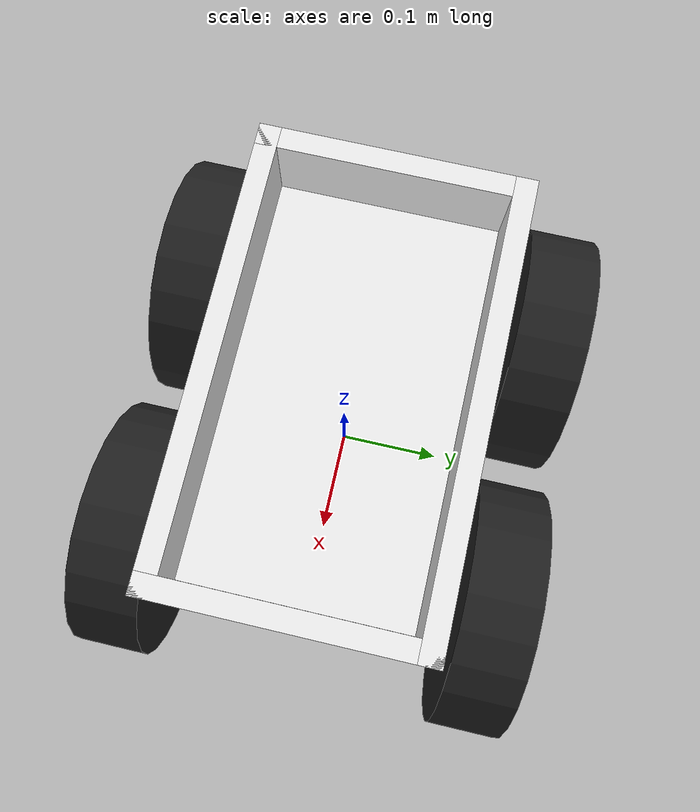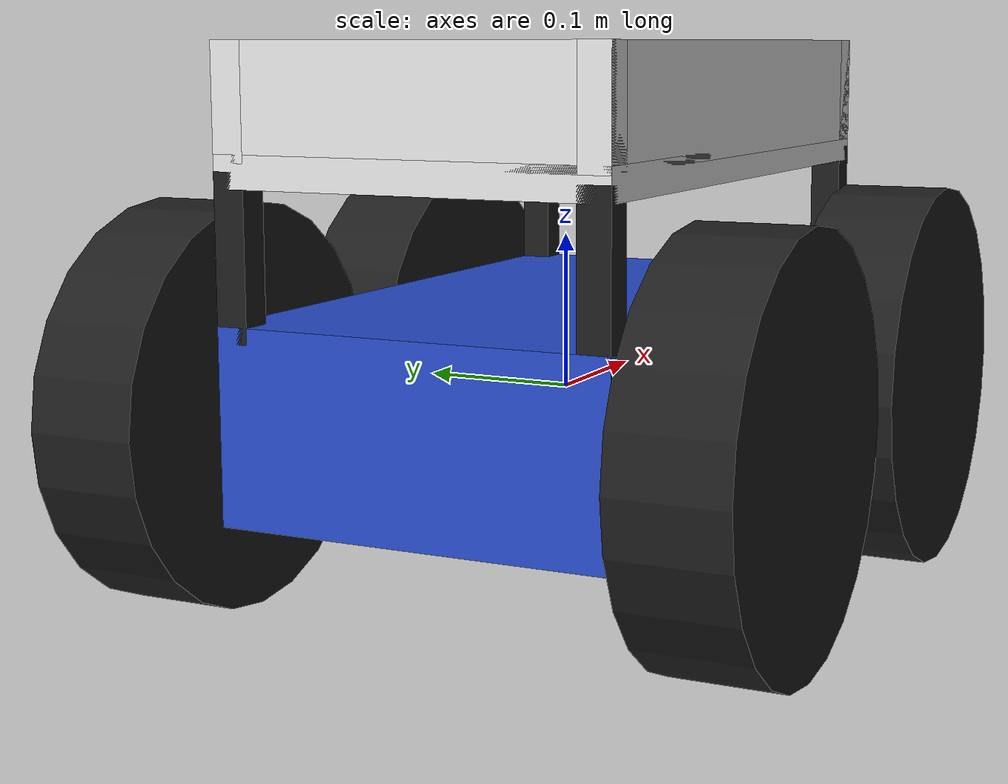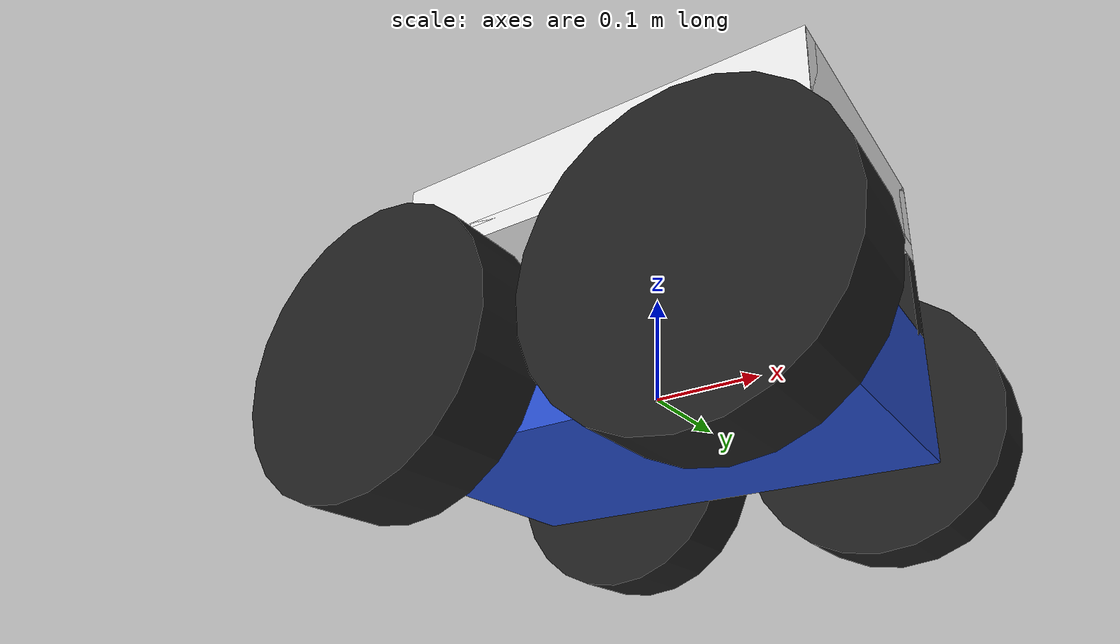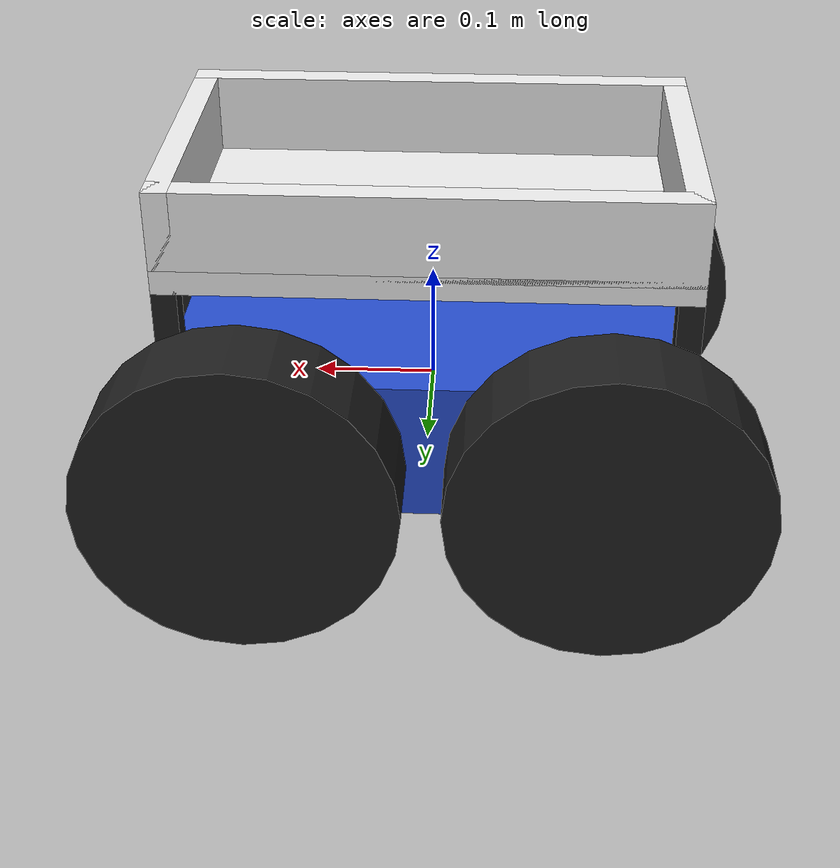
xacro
<?xml version="1.0"?>
<robot xmlns:xacro="http://www.ros.org/wiki/xacro" name="skidbot">
    <xacro:include filename="$(find skidbot_description)/urdf/skidbot_gazebo.xacro"/>
  <xacro:macro name="wheel_link" params="prefix">
    <link name="${prefix}_wheel_link">
      <visual>
        <origin xyz="0 0 0" rpy="1.570796327 0 0"/>
        <geometry>
          <cylinder length="0.07" radius="0.127"/>
        </geometry>
      </visual>
      <collision>
        <origin xyz="0 0 0" rpy="1.570796327 0 0"/>
        <geometry>
          <cylinder length="0.07" radius="0.127"/>
        </geometry>
      </collision>
          <inertial>
      <origin xyz="0 0 0" rpy="0 0 0"/>
      <mass value="0.1" />
      <inertia ixx="7.750e-3"
               ixy="0.0" iyy="4.546e-3"
               ixz="0.0" iyz="1.478e-5" izz="4.545e-3" />
    </inertial>
    </link>
    <gazebo reference="${prefix}_wheel_link">
     <material>Gazebo/Black</material>
    </gazebo>
  </xacro:macro>
  <!-- Use the macro to create a specific wheel link -->

   <link name="base_link">
    <visual>
      <origin xyz="0 0 0" rpy="0 0 0"/>
      <geometry>
        <box size="0.42 0.25 0.12"/>
      </geometry>
    </visual>
    <collision>
      <origin xyz="0 0 0" rpy="0 0 0"/>
      <geometry>
        <box size="0.42 0.25 0.12"/>
      </geometry>
    </collision>
    <inertial>
      <origin xyz="0 0 0" rpy="0 0 0" />
      <mass value="5" />
      <inertia ixx="1.340e-1"
               ixy="0.0" iyy="1.713e-1"
               ixz="0.0" iyz="1.815e-3" izz="5.917e-2" />
    </inertial>
  </link>

  <xacro:wheel_link prefix="left_front"/>
    <joint name="left_front_wheel_joint" type="continuous">
    <parent link="base_link"/>
    <child link="left_front_wheel_link"/>
    <origin xyz="0.142 0.18 0" rpy="0 0 0"/>
    <axis xyz="0 1 0"/>
  </joint>

  <xacro:wheel_link prefix="right_front"/>

  <joint name="right_front_wheel_joint" type="continuous">
    <parent link="base_link"/>
    <child link="right_front_wheel_link"/>
    <origin xyz="0.142 -0.18 0" rpy="0 0 0"/>
    <axis xyz="0 1 0"/>
  </joint>
    <xacro:wheel_link prefix="left_back"/>

  <joint name="left_back_wheel_joint" type="continuous">
    <parent link="base_link"/>
    <child link="left_back_wheel_link"/>
    <origin xyz="-0.142 0.18 0" rpy="0 0 0"/>
    <axis xyz="0 1 0"/>
  </joint>

  <xacro:wheel_link prefix="right_back"/>

  <joint name="right_back_wheel_joint" type="continuous">
    <parent link="base_link"/>
    <child link="right_back_wheel_link"/>
    <origin xyz="-0.142 -0.18 0" rpy="0 0 0"/>
    <axis xyz="0 1 0"/>
  </joint>
  <link name="middle_link">
    <visual>
      <geometry>
        <box size="0.42 0.25 0.02"/>
      </geometry>
    </visual>
    <collision>
      <geometry>
        <box size="0.42 0.25 0.02"/>
      </geometry>
    </collision>
    <inertial>
      <mass value="1" />
      <inertia ixx="1.340e-1"
               ixy="0.0" iyy="1.713e-1"
               ixz="0.0" iyz="1.815e-3" izz="5.917e-2" />
    </inertial>
  </link>
  <joint name="middle_joint" type="fixed">
    <parent link="base_link"/>
    <child link="middle_link"/>
    <origin xyz="0 0 0.15" rpy="0 0 0"/>
  </joint>
  <link name="bolt1_link">
    <visual>
      <geometry>
        <box size="0.02 0.02 0.1"/>
      </geometry>
    </visual>
    <collision>
      <geometry>
        <box size="0.02 0.02 0.1"/>
      </geometry>
    </collision>
    <inertial>
      <mass value="0.1" />
      <inertia ixx="1.340e-1"
               ixy="0.0" iyy="1.713e-1"
               ixz="0.0" iyz="1.815e-3" izz="5.917e-2" />
    </inertial>
  </link>
  <joint name="bolt1_joint" type="fixed">
    <parent link="base_link"/>
    <child link="bolt1_link"/>
    <origin xyz="0.2 0.115 0.1" rpy="0 0 0"/>
  </joint>
  <link name="bolt2_link">
    <visual>
      <geometry>
        <box size="0.02 0.02 0.1"/>
      </geometry>
    </visual>
    <collision>
      <geometry>
        <box size="0.02 0.02 0.1"/>
      </geometry>
    </collision>
    <inertial>
      <mass value="0.1" />
      <inertia ixx="1.340e-1"
               ixy="0.0" iyy="1.713e-1"
               ixz="0.0" iyz="1.815e-3" izz="5.917e-2" />
    </inertial>
  </link>
  <joint name="bolt2_joint" type="fixed">
    <parent link="base_link"/>
    <child link="bolt2_link"/>
    <origin xyz="-0.2 0.115 0.1" rpy="0 0 0"/>
  </joint>
  <link name="bolt3_link">
    <visual>
      <geometry>
        <box size="0.02 0.02 0.1"/>
      </geometry>
    </visual>
    <collision>
      <geometry>
        <box size="0.02 0.02 0.1"/>
      </geometry>
    </collision>
    <inertial>
      <mass value="0.1" />
      <inertia ixx="1.340e-1"
               ixy="0.0" iyy="1.713e-1"
               ixz="0.0" iyz="1.815e-3" izz="5.917e-2" />
    </inertial>
  </link>
  <joint name="bolt3_joint" type="fixed">
    <parent link="base_link"/>
    <child link="bolt3_link"/>
    <origin xyz="-0.2 -0.115 0.1" rpy="0 0 0"/>
  </joint>
  <link name="bolt4_link">
    <visual>
      <geometry>
        <box size="0.02 0.02 0.1"/>
      </geometry>
    </visual>
    <collision>
      <geometry>
        <box size="0.02 0.02 0.1"/>
      </geometry>
    </collision>
    <inertial>
      <mass value="0.1" />
      <inertia ixx="1.340e-1"
               ixy="0.0" iyy="1.713e-1"
               ixz="0.0" iyz="1.815e-3" izz="5.917e-2" />
    </inertial>
  </link>
  <joint name="bolt4_joint" type="fixed">
    <parent link="base_link"/>
    <child link="bolt4_link"/>
    <origin xyz="0.2 -0.115 0.1" rpy="0 0 0"/>
  </joint>
  <link name="side1_link">
    <visual>
      <geometry>
        <box size="0.42 0.02 0.07"/>
      </geometry>
    </visual>
    <collision>
      <geometry>
        <box size="0.42 0.02 0.1"/>
      </geometry>
    </collision>
    <inertial>
      <mass value="0.1" />
      <inertia ixx="1.340e-1"
               ixy="0.0" iyy="1.713e-1"
               ixz="0.0" iyz="1.815e-3" izz="5.917e-2" />
    </inertial>
  </link>
  <joint name="side1_joint" type="fixed">
    <parent link="base_link"/>
    <child link="side1_link"/>
    <origin xyz="0 -0.115 0.19" rpy="0 0 0"/>
  </joint>
  <link name="side2_link">
    <visual>
      <geometry>
        <box size="0.02 0.25 0.07"/>
      </geometry>
    </visual>
    <collision>
      <geometry>
        <box size="0.02 0.25 0.07"/>
      </geometry>
    </collision>
    <inertial>
      <mass value="0.1" />
      <inertia ixx="1.340e-1"
               ixy="0.0" iyy="1.713e-1"
               ixz="0.0" iyz="1.815e-3" izz="5.917e-2" />
    </inertial>
  </link>
  <joint name="side2_joint" type="fixed">
    <parent link="base_link"/>
    <child link="side2_link"/>
    <origin xyz="0.2 0 0.19" rpy="0 0 0"/>
  </joint>
  <link name="side3_link">
    <visual>
      <geometry>
        <box size="0.42 0.02 0.07"/>
      </geometry>
    </visual>
    <collision>
      <geometry>
        <box size="0.42 0.02 0.07"/>
      </geometry>
    </collision>
    <inertial>
      <mass value="0.1" />
      <inertia ixx="1.340e-1"
               ixy="0.0" iyy="1.713e-1"
               ixz="0.0" iyz="1.815e-3" izz="5.917e-2" />
    </inertial>
  </link>
  <joint name="side3_joint" type="fixed">
    <parent link="base_link"/>
    <child link="side3_link"/>
    <origin xyz="0 0.115 0.19" rpy="0 0 0"/>
  </joint>
  <link name="side4_link">
    <visual>
      <geometry>
        <box size="0.02 0.25 0.07"/>
      </geometry>
    </visual>
    <collision>
      <geometry>
        <box size="0.02 0.25 0.07"/>
      </geometry>
    </collision>
    <inertial>
      <mass value="0.1" />
      <inertia ixx="1.340e-1"
               ixy="0.0" iyy="1.713e-1"
               ixz="0.0" iyz="1.815e-3" izz="5.917e-2" />
    </inertial>
  </link>
  <joint name="side4_joint" type="fixed">
    <parent link="base_link"/>
    <child link="side4_link"/>
    <origin xyz="-0.2 0 0.19" rpy="0 0 0"/>
  </joint>
</robot>
